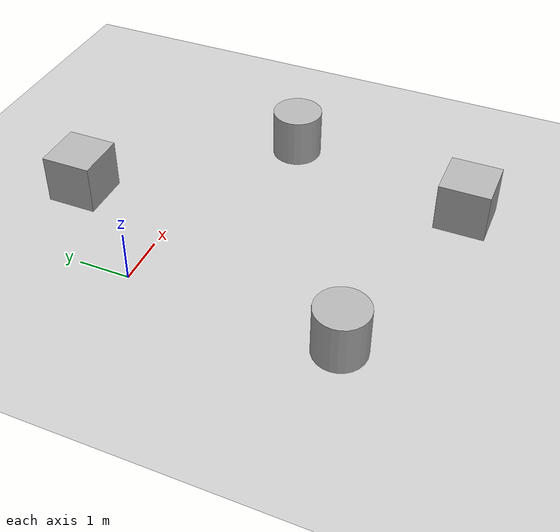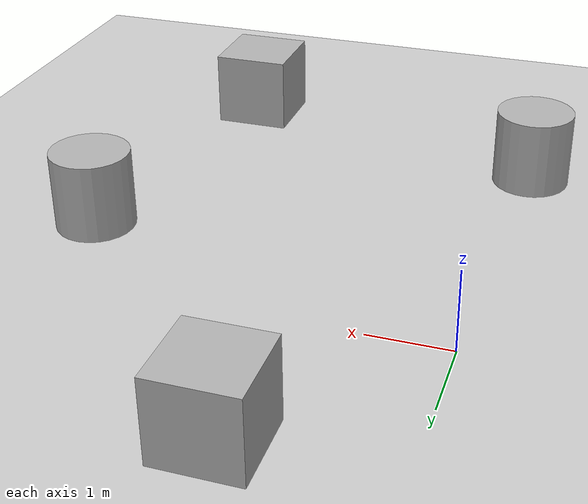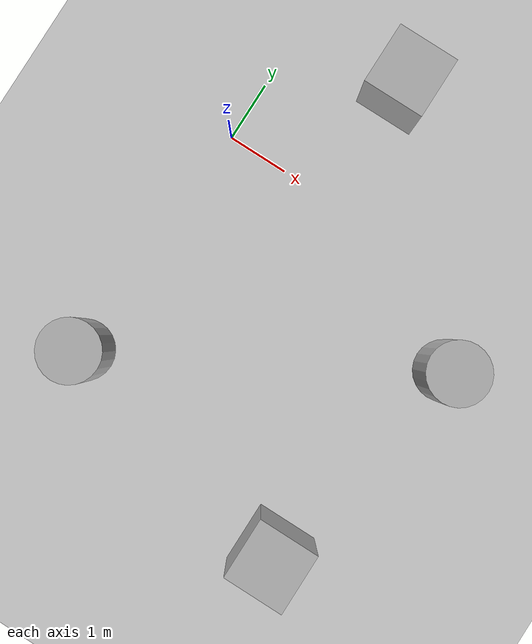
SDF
<sdf version='1.10'>
  <world name='empty'>
    <physics name='1ms' type='ignored'>
      <max_step_size>0.001</max_step_size>
      <real_time_factor>1</real_time_factor>
      <real_time_update_rate>1000</real_time_update_rate>
    </physics>
    <plugin name='gz::sim::systems::Physics' filename='gz-sim-physics-system'/>
    <plugin name='gz::sim::systems::UserCommands' filename='gz-sim-user-commands-system'/>
    <plugin name='gz::sim::systems::SceneBroadcaster' filename='gz-sim-scene-broadcaster-system'/>
    <plugin name='gz::sim::systems::Contact' filename='gz-sim-contact-system'/>
    <gravity>0 0 -9.8000000000000007</gravity>
    <magnetic_field>5.5644999999999998e-06 2.2875799999999999e-05 -4.2388400000000002e-05</magnetic_field>
    <atmosphere type='adiabatic'/>
    <scene>
      <ambient>0.400000006 0.400000006 0.400000006 1</ambient>
      <background>0.699999988 0.699999988 0.699999988 1</background>
      <shadows>true</shadows>
    </scene>
    <model name='ground_plane'>
      <static>true</static>
      <link name='link'>
        <collision name='collision'>
          <geometry>
            <plane>
              <normal>0 0 1</normal>
              <size>100 100</size>
            </plane>
          </geometry>
          <surface>
            <friction>
              <ode/>
            </friction>
            <bounce/>
            <contact/>
          </surface>
        </collision>
        <visual name='visual'>
          <geometry>
            <plane>
              <normal>0 0 1</normal>
              <size>100 100</size>
            </plane>
          </geometry>
          <material>
            <ambient>0.800000012 0.800000012 0.800000012 1</ambient>
            <diffuse>0.800000012 0.800000012 0.800000012 1</diffuse>
            <specular>0.800000012 0.800000012 0.800000012 1</specular>
          </material>
        </visual>
        <pose>0 0 0 0 0 0</pose>
        <inertial>
          <pose>0 0 0 0 0 0</pose>
          <mass>1</mass>
          <inertia>
            <ixx>1</ixx>
            <ixy>0</ixy>
            <ixz>0</ixz>
            <iyy>1</iyy>
            <iyz>0</iyz>
            <izz>1</izz>
          </inertia>
        </inertial>
        <enable_wind>false</enable_wind>
      </link>
      <pose>0 0 0 0 0 0</pose>
      <self_collide>false</self_collide>
    </model>
    <model name='box'>
      <pose>1.8607837336559614 2.0747822122391373 0.49999999990199806 6.2287739151293738e-22 9.3279666454713669e-22 -3.6315533669320137e-22</pose>
      <link name='box_link'>
        <inertial>
          <inertia>
            <ixx>0.16666</ixx>
            <ixy>0</ixy>
            <ixz>0</ixz>
            <iyy>0.16666</iyy>
            <iyz>0</iyz>
            <izz>0.16666</izz>
          </inertia>
          <mass>1</mass>
          <pose>0 0 0 0 0 0</pose>
        </inertial>
        <collision name='box_collision'>
          <geometry>
            <box>
              <size>1 1 1</size>
            </box>
          </geometry>
          <surface>
            <friction>
              <ode/>
            </friction>
            <bounce/>
            <contact/>
          </surface>
        </collision>
        <visual name='box_visual'>
          <geometry>
            <box>
              <size>1 1 1</size>
            </box>
          </geometry>
          <material>
            <ambient>0.300000012 0.300000012 0.300000012 1</ambient>
            <diffuse>0.699999988 0.699999988 0.699999988 1</diffuse>
            <specular>1 1 1 1</specular>
          </material>
        </visual>
        <pose>0 0 0 0 0 0</pose>
        <enable_wind>false</enable_wind>
      </link>
      <static>false</static>
      <self_collide>false</self_collide>
    </model>
    <model name='box_0'>
      <pose>4.0311881623289132 -5.167728249033237 0.49999999990199806 6.2287739151293738e-22 9.3279666454713669e-22 -3.6315533669320137e-22</pose>
      <link name='box_link'>
        <inertial>
          <inertia>
            <ixx>0.16666</ixx>
            <ixy>0</ixy>
            <ixz>0</ixz>
            <iyy>0.16666</iyy>
            <iyz>0</iyz>
            <izz>0.16666</izz>
          </inertia>
          <mass>1</mass>
          <pose>0 0 0 0 0 0</pose>
        </inertial>
        <collision name='box_collision'>
          <geometry>
            <box>
              <size>1 1 1</size>
            </box>
          </geometry>
          <surface>
            <friction>
              <ode/>
            </friction>
            <bounce/>
            <contact/>
          </surface>
        </collision>
        <visual name='box_visual'>
          <geometry>
            <box>
              <size>1 1 1</size>
            </box>
          </geometry>
          <material>
            <ambient>0.300000012 0.300000012 0.300000012 1</ambient>
            <diffuse>0.699999988 0.699999988 0.699999988 1</diffuse>
            <specular>1 1 1 1</specular>
          </material>
        </visual>
        <pose>0 0 0 0 0 0</pose>
        <enable_wind>false</enable_wind>
      </link>
      <static>false</static>
      <self_collide>false</self_collide>
    </model>
    <model name='cylinder'>
      <pose>4.8472895103119171 -1.3221409620637772 0.49999942638036005 -9.0982065026622396e-20 -3.1636782970889296e-19 -3.0105052574203572e-20</pose>
      <link name='cylinder_link'>
        <inertial>
          <inertia>
            <ixx>0.14580000000000001</ixx>
            <ixy>0</ixy>
            <ixz>0</ixz>
            <iyy>0.14580000000000001</iyy>
            <iyz>0</iyz>
            <izz>0.125</izz>
          </inertia>
          <mass>1</mass>
          <pose>0 0 0 0 0 0</pose>
        </inertial>
        <collision name='cylinder_collision'>
          <geometry>
            <cylinder>
              <radius>0.5</radius>
              <length>1</length>
            </cylinder>
          </geometry>
          <surface>
            <friction>
              <ode/>
            </friction>
            <bounce/>
            <contact/>
          </surface>
        </collision>
        <visual name='cylinder_visual'>
          <geometry>
            <cylinder>
              <radius>0.5</radius>
              <length>1</length>
            </cylinder>
          </geometry>
          <material>
            <ambient>0.300000012 0.300000012 0.300000012 1</ambient>
            <diffuse>0.699999988 0.699999988 0.699999988 1</diffuse>
            <specular>1 1 1 1</specular>
          </material>
        </visual>
        <pose>0 0 0 0 0 0</pose>
        <enable_wind>false</enable_wind>
      </link>
      <static>false</static>
      <self_collide>false</self_collide>
    </model>
    <model name='cylinder_0'>
      <pose>-0.15124996745924069 -4.1191032904010783 0.49999942638036005 4.0419711039099784e-19 -1.9022942735508174e-19 1.0659876252529823e-20</pose>
      <link name='cylinder_link'>
        <inertial>
          <inertia>
            <ixx>0.14580000000000001</ixx>
            <ixy>0</ixy>
            <ixz>0</ixz>
            <iyy>0.14580000000000001</iyy>
            <iyz>0</iyz>
            <izz>0.125</izz>
          </inertia>
          <mass>1</mass>
          <pose>0 0 0 0 0 0</pose>
        </inertial>
        <collision name='cylinder_collision'>
          <geometry>
            <cylinder>
              <radius>0.5</radius>
              <length>1</length>
            </cylinder>
          </geometry>
          <surface>
            <friction>
              <ode/>
            </friction>
            <bounce/>
            <contact/>
          </surface>
        </collision>
        <visual name='cylinder_visual'>
          <geometry>
            <cylinder>
              <radius>0.5</radius>
              <length>1</length>
            </cylinder>
          </geometry>
          <material>
            <ambient>0.300000012 0.300000012 0.300000012 1</ambient>
            <diffuse>0.699999988 0.699999988 0.699999988 1</diffuse>
            <specular>1 1 1 1</specular>
          </material>
        </visual>
        <pose>0 0 0 0 0 0</pose>
        <enable_wind>false</enable_wind>
      </link>
      <static>false</static>
      <self_collide>false</self_collide>
    </model>
    <light name='sun' type='directional'>
      <pose>0 0 10 0 0 0</pose>
      <cast_shadows>true</cast_shadows>
      <intensity>1</intensity>
      <direction>-0.5 0.10000000000000001 -0.90000000000000002</direction>
      <diffuse>0.800000012 0.800000012 0.800000012 1</diffuse>
      <specular>0.200000003 0.200000003 0.200000003 1</specular>
      <attenuation>
        <range>1000</range>
        <linear>0.01</linear>
        <constant>0.90000000000000002</constant>
        <quadratic>0.001</quadratic>
      </attenuation>
      <spot>
        <inner_angle>0</inner_angle>
        <outer_angle>0</outer_angle>
        <falloff>0</falloff>
      </spot>
    </light>
  </world>
</sdf>
